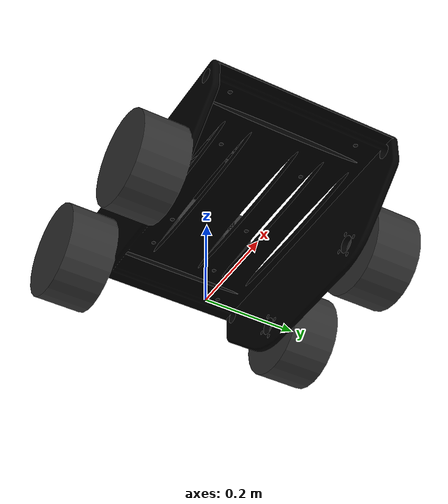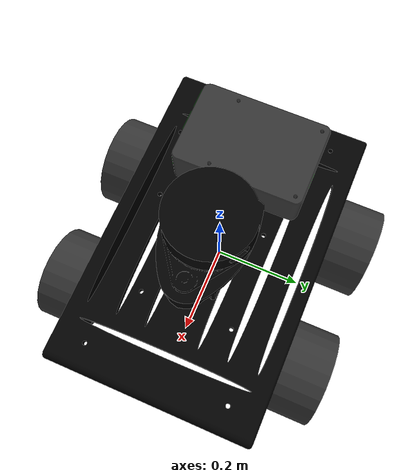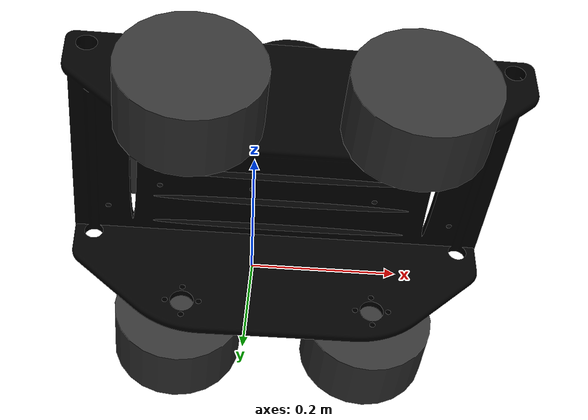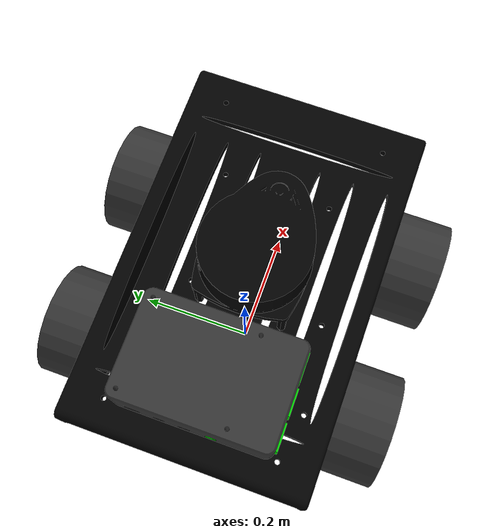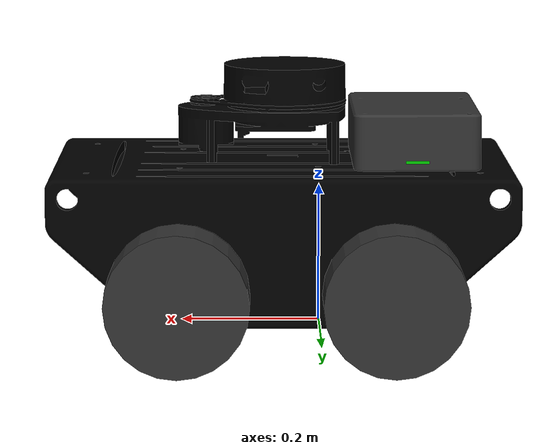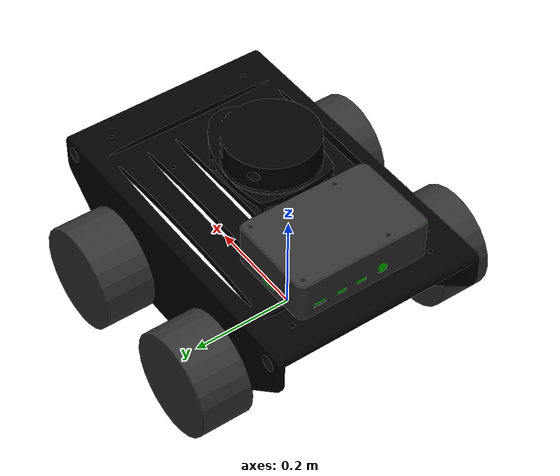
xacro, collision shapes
<?xml version="1.0" ?>

<robot xmlns:xacro="http://www.ros.org/wiki/xacro" name="myrobot">

  <xacro:include filename="$(find nova_description)/urdf/colors.xacro" />

    <!-- Robot footprint link -->
  <link name="robot_footprint"/>
  <joint name="robot_footprint_joint" type="fixed">
    <origin xyz="0 0 0" rpy="0 0 0" />
    <parent link="robot_footprint" />
    <child link="base_link" />
  </joint>

    <!-- Robot base_link -->
  <link name="base_link">
    <inertial>
      <origin xyz="0.0 0.0 0.0" rpy="0 0 0"/>
      <mass value="20.0"/>
      <inertia ixx="0.1" ixy="0.0" ixz="0.0" iyy="0.1" iyz="0.0" izz="0.1"/>
    </inertial>
    <visual name="base_link">
      <origin xyz="-0.277 -0.2 0.03" rpy="1.57 0.0 1.57"/>
      <geometry>
        <mesh filename="package://nova_description/meshes/Robot_base.STL" scale="0.003 0.003 0.003"/>
      </geometry>
      <material name="Black"/>
    </visual>
    <collision>
      <origin xyz="-0.277 -0.2 0.03" rpy="1.57 0.0 1.57"/>
      <geometry>
        <mesh filename="package://nova_description/meshes/Robot_base.STL" scale="0.003 0.003 0.003"/>
      </geometry>
    </collision>
  </link>

    <!-- xacro setup (Wheel) -->
  <xacro:macro name="wheel" params="name x y z r p n mesh">

      <link name="${name}">
          <inertial>
              <origin xyz="0.0 0.0 0.0" rpy="0.0 0.0 0.0"/>
              <mass value="15.0"/>
              <inertia ixx="0.040625" ixy="0.0" ixz="0.0" iyy="0.040625" iyz="0.0" izz="0.075"/>
          </inertial>
          <visual name="${name}">
              <origin xyz="0.0 0.0 0.0" rpy="0.0 0.0 0.0"/>
              <geometry>
                 <mesh filename="${mesh}" scale="0.003 0.003 0.003"/>
              </geometry>
              <material name="DarkGrey"/>
          </visual>
          <collision>
              <geometry>
                <cylinder radius="0.1" length="0.1"/>
              </geometry>
          </collision>
      </link>

      <joint name="Joint_${name}" type="continuous">
          <origin xyz="${x} ${y} ${z}" rpy="${r} ${p} ${n}"/>
          <parent link="base_link"/>
          <child link="${name}"/>
          <axis xyz="0.0 0.0 1.0"/>
      </joint>
  </xacro:macro>

    <!--wheel xacro-->
  <xacro:wheel name="Left_Wheel_Front" x="0.2" y="0.267" z="0.08" r="1.5708" p="3.14" n="3.14" mesh="package://nova_description/meshes/MecanumLeft.stl"/>
  <xacro:wheel name="Right_Wheel_Back" x="-0.1" y="-0.248" z="0.08" r="1.5708" p="3.14" n="3.14" mesh="package://nova_description/meshes/MecanumRight.stl"/>
  <xacro:wheel name="Left_Wheel_Back" x="-0.1" y="0.267" z="0.08" r="1.5708" p="3.14" n="3.14" mesh="package://nova_description/meshes/MecanumLeft.stl"/>
  <xacro:wheel name="Right_Wheel_Front" x="0.2" y="-0.248" z="0.08" r="1.5708" p="3.14" n="3.14" mesh="package://nova_description/meshes/MecanumRight.stl"/>

    <!-- RPlidar -->
  <link name="rplidar_link">
      <inertial>
        <mass value="0.17"/>
        <origin xyz="0 0 0" rpy="0 0 0"/>
        <inertia ixx="1e-6" ixy="0" ixz="0" iyy="1e-6" iyz="0" izz="1e-6"/>
      </inertial>
      <visual>
          <origin xyz="0.0 0.0 0.065" rpy="0.0 0.0 0.0"/>
          <geometry>
            <mesh filename="package://nova_description/meshes/rplidar.dae" scale="2.5 2.5 2.5"/>
          </geometry>
          <material name="Black"/>
      </visual>
      <collision>
          <origin xyz="0.0 0.0 0.065" rpy="0.0 0.0 0.0"/>
          <geometry>
            <mesh filename="package://nova_description/meshes/rplidar.dae" scale="2.5 2.5 2.5"/>
          </geometry>
      </collision>
  </link>

  <joint name="rplidar_joint" type="fixed">
    <origin xyz="0.05 0.0 0.29" rpy="0.0 0.0 0.0"/>
    <parent link="base_link"/>
    <child link="rplidar_link"/>
    <axis xyz="0.0 1.0 0.0"/>
  </joint>

  <link name="Raspberry_pi_4_case">
      <inertial>
        <mass value="0.1"/>
        <origin xyz="0 0 0" rpy="0 0 0"/>
        <inertia ixx="1e-6" ixy="0" ixz="0" iyy="1e-6" iyz="0" izz="1e-6"/>
      </inertial>
      <visual>
          <origin xyz="0.0 0.0 0.0" rpy="3.14 3.14 1.57"/>
          <geometry>
            <mesh filename="package://nova_description/meshes/Raspberry_pi_4_case.stl" scale="0.003 0.003 0.003"/>
          </geometry>
          <material name="DarkGrey"/>
      </visual>
      <collision>
          <origin xyz="0.0 0.0 0.0" rpy="3.14 3.14 1.57"/>
          <geometry>
            <mesh filename="package://nova_description/meshes/Raspberry_pi_4_case.stl" scale="0.003 0.003 0.003"/>
          </geometry>
      </collision>
  </link>

  <joint name="Raspberry_pi_4_case_joint" type="fixed">
    <origin xyz="-0.22 0.135 0.26" rpy="0 0 0"/>
    <parent link="base_link"/>
    <child link="Raspberry_pi_4_case"/>
  </joint>

  <link name="Raspberry_pi_4">
      <inertial>
        <mass value="0.2"/>
        <origin xyz="0 0 0" rpy="0 0 0"/>
        <inertia ixx="1e-6" ixy="0" ixz="0" iyy="1e-6" iyz="0" izz="1e-6"/>
      </inertial>
      <visual>
          <origin xyz="0.0 0.0 0.0" rpy="3.14 3.14 -1.57"/>
          <geometry>
            <mesh filename="package://nova_description/meshes/Raspberry_pi_4.stl" scale="0.003 0.003 0.003"/>
          </geometry>
          <material name="Green"/>
      </visual>
      <collision>
          <origin xyz="0.0 0.0 0.0" rpy="3.14 3.14 -1.57"/>
          <geometry>
            <mesh filename="package://nova_description/meshes/Raspberry_pi_4.stl" scale="0.003 0.003 0.003"/>
          </geometry>
      </collision>
  </link>

  <joint name="Raspberry_pi_4_joint" type="fixed">
    <origin xyz="0.1455 -0.366 0.252" rpy="0 0 0"/>
    <parent link="base_link"/>
    <child link="Raspberry_pi_4"/>
  </joint>

</robot>

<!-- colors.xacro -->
<robot name="myrobot" xmlns:xacro="http://ros.org/wiki/xacro">

    <material name="Black">
        <color rgba="0.0 0.0 0.0 1.0"/>
    </material>

    <material name="Blue">
        <color rgba="0.0 0.0 0.8 1.0"/>
    </material>

    <material name="Green">
        <color rgba="0.0 0.8 0.0 1.0"/>
    </material>

    <material name="Grey">
        <color rgba="0.5 0.5 0.5 1.0"/>
    </material>

    <material name="DarkGrey">
        <color rgba="0.2 0.2 0.2 1.0"/>
    </material>

    <material name="Red">
        <color rgba="0.8 0.0 0.0 1.0"/>
    </material>

    <material name="White">
        <color rgba="1.0 1.0 1.0 1.0"/>
    </material>

</robot>
